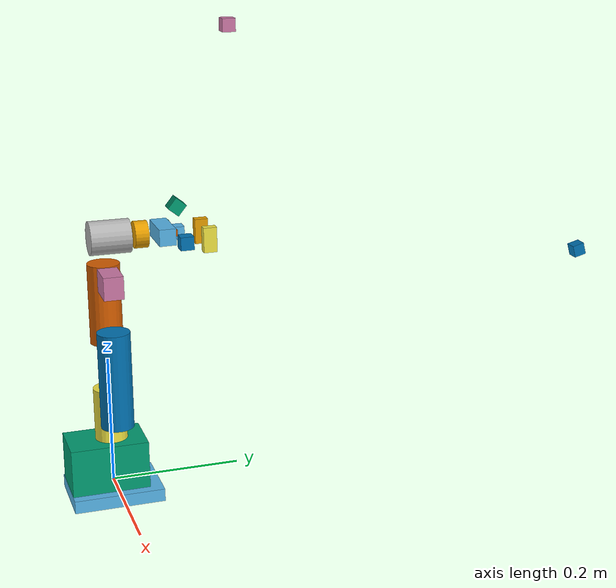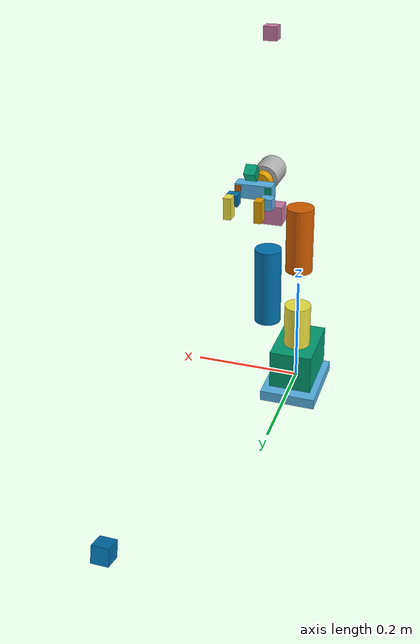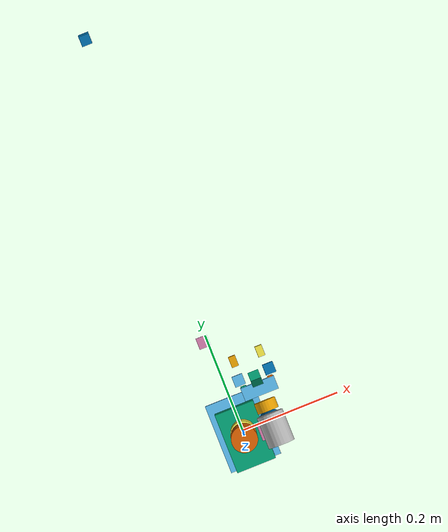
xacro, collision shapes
<?xml version="1.0"?>

<robot xmlns:xacro="http://www.ros.org/wiki/xacro" name="avu">

  <xacro:include filename="$(find avu_description)/urdf/avu_gazebo.xacro" />
  <xacro:include filename="$(find avu_description)/urdf/avu_ros_control.xacro" />

    <xacro:property name="M_PI" value="3.1415926535897931" />

    <xacro:property name="d435_cam_width" value="0.090"/>
    <xacro:property name="d435_cam_height" value="0.025"/>
    <xacro:property name="d435_cam_depth" value="0.02505"/>

    <xacro:property name="d435_cam_depth_to_infra1_offset" value="0.0"/>
    <xacro:property name="d435_cam_depth_to_infra2_offset" value="-0.050"/>
    <xacro:property name="d435_cam_depth_to_color_offset" value="0.015"/>

    <xacro:property name="joint_effort" value="56.0"/>
    <xacro:property name="joint_velocity" value="2.792527"/>
    <xacro:property name="joint_damping" value="0.0"/>
    <xacro:property name="joint_friction" value="0.0"/>

    <xacro:property name="link1_mass" value="0.12"/>
    <xacro:property name="link2_mass" value="0.19"/>
    <xacro:property name="link3_mass" value="0.16"/>
    <xacro:property name="link4_mass" value="0.124"/>
    <xacro:property name="link5_mass" value="0.11"/>
    <xacro:property name="link6_mass" value="0.0739"/>
    <xacro:property name="flange_mass" value="0.035"/>

    <xacro:property name="joint_effort" value="56.0"/>
    <xacro:property name="joint_velocity" value="2.792527"/>
    <xacro:property name="joint_damping" value="0.0"/>
    <xacro:property name="joint_friction" value="0.0"/>

    <xacro:property name="gripper_link_mass" value="0.007"/>
    <xacro:property name="gripper_link_ixx" value="1e-6"/>
    <xacro:property name="gripper_link_iyy" value="1e-6"/>
    <xacro:property name="gripper_link_izz" value="1e-6"/>

    <xacro:macro name="link_inertial" params="mass ixx iyy izz">
        <inertial>
          <origin xyz="0 0 0.0" rpy="0 0 0"/>
          <mass value="${mass}"/>
          <inertia
              ixx="${ixx}" ixy="0.0" ixz="0.0"
              iyy="${iyy}" iyz="0.0"
              izz="${izz}"/>
        </inertial>
    </xacro:macro>

    <xacro:macro name="gripper_link_inertial">
      <inertial>
        <origin xyz="0 0 0.0" rpy="0 0 0"/>
        <mass value="${gripper_link_mass}"/>
        <inertia
          ixx="${gripper_link_ixx}" ixy="0.0" ixz="0.0"
          iyy="${gripper_link_iyy}" iyz="0.0"
          izz="${gripper_link_izz}"/>
      </inertial>
    </xacro:macro>

    <xacro:macro name="material_visual" params="ref_link ambient diffuse specular">
        <gazebo reference="${ref_link}">
        <visual>
            <material>
            <ambient>${ambient}</ambient>
            <diffuse>${diffuse}</diffuse>
            <specular>${specular}</specular>
            </material>
        </visual>
        </gazebo>
    </xacro:macro>

    <link name="world"/>

    <link name="base_link">
            <inertial>
                <origin xyz="0 0 0.0" rpy="0 0 0"/>
                <mass value="0.33"/>
                <inertia
                    ixx="0.000784" ixy="0.0" ixz="0.0"
                    iyy="0.000867" iyz="0.0"
                    izz="0.001598"/>
            </inertial>
            <visual>
                <geometry>
                    <mesh filename="package://avu_description/meshes/base_link.dae"/>
                </geometry>
                <origin xyz="0.0 0 -0.03" rpy="0 0 ${pi/2}"/>
            </visual>
            <collision>
                <geometry>
                    <box size="0.105 0.14 0.02"/>
                </geometry>
                <origin xyz="0.0 0.0 -0.015" rpy="0 0 0"/>
            </collision>
    </link>

    <link name="link1">
      <xacro:link_inertial mass="${link1_mass}" ixx="0.000148" iyy="0.000148" izz="0.000096"/>
      <visual>
        <geometry>
          <mesh filename="package://avu_description/meshes/link1.dae"/>
        </geometry>
        <origin xyz="0.0 0 0" rpy="0 0 ${-pi/2}"/>
      </visual>
      <collision>
        <geometry>
          <box size="0.08 0.12 0.075"/>
        </geometry>
        <origin xyz="0.0 -0.01 0.034" rpy="0 0 0"/>
      </collision>
    </link>

    <link name="link2">
      <xacro:link_inertial mass="${link2_mass}" ixx="0.000148" iyy="0.000148" izz="0.000096"/>
      <visual>
        <geometry>
          <mesh filename="package://avu_description/meshes/link2.dae"/>
        </geometry>
        <origin xyz="0.0 0 -0.06096" rpy="0 0 ${-pi/2}"/>
      </visual>
      <collision>
        <geometry>
          <cylinder radius="0.025" length="0.085"/>
        </geometry>
        <origin xyz="0.0 0 -0.02" rpy="0 0 ${-pi/2}"/>
      </collision>
    </link>

    <link name="link3">
      <xacro:link_inertial mass="${link3_mass}" ixx="0.000148" iyy="0.000148" izz="0.000096"/>
      <visual>
        <geometry>
          <mesh filename="package://avu_description/meshes/link3.dae"/>
        </geometry>
        <origin xyz="0.0 0 0.03256" rpy="0 ${-pi/2} 0"/>
      </visual>
      <collision>
        <geometry>
          <cylinder radius="0.025" length="0.15"/>
        </geometry>
        <origin xyz="-0.058 0 0.059" rpy="0 ${-pi/2} 0"/>
      </collision>
    </link>

    <link name="link4">
      <xacro:link_inertial mass="${link4_mass}" ixx="0.000103" iyy="0.000103" izz="0.000096"/>
      <visual>
        <geometry>
          <mesh filename="package://avu_description/meshes/link4.dae"/>
        </geometry>
        <origin xyz="0.0 0 0.03056" rpy="0 ${-pi/2} 0"/>
      </visual>
      <collision>
        <geometry>
          <cylinder radius="0.025" length="0.125"/>
        </geometry>
        <origin xyz="-0.05 0 0.0" rpy="0 ${-pi/2} 0"/>
      </collision>
    </link>

    <link name="link5">
      <xacro:link_inertial mass="${link5_mass}" ixx="0.000103" iyy="0.000103" izz="0.000096"/>
      <visual>
        <geometry>
          <mesh filename="package://avu_description/meshes/link5.dae"/>
        </geometry>
        <origin xyz="0.0 0 -0.03356" rpy="${-pi/2} 0 0"/>
      </visual>
      <collision>
        <geometry>
          <box size="0.03 0.035 0.05"/>
        </geometry>
        <origin xyz="0.0 0 -0.005" rpy="0 0.0 0"/>
      </collision>
    </link>

    <link name="link6">
      <xacro:link_inertial mass="${link6_mass}" ixx="0.00006649" iyy="0.00006649" izz="0.000096"/>
      <visual>
        <geometry>
          <mesh filename="package://avu_description/meshes/link6.dae"/>
        </geometry>
        <origin xyz="0 0.00 -0.038" rpy="0 0 0"/>
      </visual>
      <collision>
        <geometry>
          <cylinder radius="0.025" length="0.06"/>
        </geometry>
        <origin xyz="0 0.00 0.0" rpy="${-pi/2} 0 0"/>
      </collision>
    </link>

    <link name="flange_link">
      <xacro:link_inertial mass="${flange_mass}" ixx="0.0000149" iyy="0.0000149" izz="0.0000196"/>
      <visual>
        <geometry>
          <mesh filename="package://avu_description/meshes/link7.dae"/>
        </geometry>
        <origin xyz="0.0 0 -0.012" rpy="0 0 0"/>
      </visual>
      <collision>
        <geometry>
          <cylinder radius="0.02" length="0.02"/>
        </geometry>
        <origin xyz="0 0.00 0.0" rpy="0 0 0"/>
      </collision>
    </link>

    <joint name="virtual" type="fixed">
        <parent link="world"/>
        <child link="base_link"/>
        <origin xyz="0 0 0" rpy="0 0 0"/>
    </joint>

    <joint name="base_link_to_link1" type="fixed">
      <parent link="base_link"/>
      <child link="link1"/>
      <origin xyz="0 0 0" rpy="0 0 0"/>
    </joint>

    <joint name="joint_1" type="revolute">
      <axis xyz="0 0 1"/>
      <limit effort="${joint_effort}" lower="-2.879793" upper="2.879793" velocity="${joint_velocity}"/>
      <parent link="link1"/>
      <child link="link2"/>
      <origin xyz="0 0 0.13156" rpy="0 0 ${pi/2}"/>
      <dynamics damping="${joint_damping}" friction="${joint_friction}"/>
    </joint>

    <joint name="joint_2" type="revolute">
      <axis xyz="0 0 1"/>
      <limit effort="${joint_effort}" lower="-2.879793" upper="2.879793" velocity="${joint_velocity}"/>
      <parent link="link2"/>
      <child link="link3"/>
      <origin xyz="0 0 -0.001" rpy="0 ${pi/2} ${-pi/2}"/>
      <dynamics damping="${joint_damping}" friction="${joint_friction}"/>
    </joint>

    <joint name="joint_3" type="revolute">
      <axis xyz="0 0 1"/>
      <limit effort="${joint_effort}" lower="-2.879793" upper="2.879793" velocity="${joint_velocity}"/>
      <parent link="link3"/>
      <child link="link4"/>
      <origin xyz="-0.1104 0 0" rpy="0 0 0"/>
      <dynamics damping="${joint_damping}" friction="${joint_friction}"/>
    </joint>

    <joint name="joint_4" type="revolute">
      <axis xyz="0 0 1"/>
      <limit effort="${joint_effort}" lower="-2.879793" upper="2.879793" velocity="${joint_velocity}"/>
      <parent link="link4"/>
      <child link="link5"/>
      <origin xyz="-0.096 0 0.06062" rpy="0 0 ${-pi/2}"/>
      <dynamics damping="${joint_damping}" friction="${joint_friction}"/>
    </joint>

    <joint name="joint_5" type="revolute">
      <axis xyz="0 0 1"/>
      <limit effort="${joint_effort}" lower="-2.879793" upper="2.879793" velocity="${joint_velocity}"/>
      <parent link="link5"/>
      <child link="link6"/>
      <origin xyz="0 -0.07318 0" rpy="${pi/2} ${-pi/2} 0"/>
      <dynamics damping="${joint_damping}" friction="${joint_friction}"/>
    </joint>

    <joint name="joint_6" type="revolute">
      <axis xyz="0 0 1"/>
      <limit effort="${joint_effort}" lower="-3.05" upper="3.05" velocity="${joint_velocity}"/>
      <parent link="link6"/>
      <child link="flange_link"/>
      <origin xyz="0 0.0456 0" rpy="${-pi/2} 0 0"/>
      <dynamics damping="${joint_damping}" friction="${joint_friction}"/>
    </joint>

    <link name="gripper_base">
      <inertial>
        <origin xyz="0 0 0.0" rpy="0 0 0"/>
        <mass value="0.07"/>
        <inertia
          ixx="0.000010725" ixy="0.0" ixz="0.0"
          iyy="0.000014392" iyz="0.0"
          izz="0.000018517"/>
      </inertial>
      <visual>
        <geometry>
          <mesh filename="package://avu_description/meshes/gripper_base.dae"/>
        </geometry>
        <origin xyz="0.0 0.0 -0.012" rpy="0 0 0"/>
      </visual>
      <collision>
        <geometry>
          <box size="0.065 0.025 0.025"/>
        </geometry>
        <origin xyz="0.0 0.0 0.0" rpy="0 0 0"/>
      </collision>
    </link>

    <link name='camera_link'>
      <pose>0 0 0 0 0 0</pose>
      <collision>
        <origin xyz="0 0 0" rpy="0 0 0"/>
        <geometry>
          <box size=".02 .02 .02"/>
        </geometry>
      </collision>

      <visual name='camera_link_visual'>
        <origin xyz="0 0 0" rpy="0 0 0"/>
        <geometry>
          <box size=".02 .02 .02"/>
        </geometry>
      </visual>

    </link>

    <joint type="fixed" name="camera_joint">
      <origin xyz="0 0.021 0.038" rpy="0 0.69 1.5707"/>
      <child link="camera_link"/>
      <parent link="gripper_base"/>
    </joint>

    <joint type="fixed" name="camera_optical_joint">
      <origin xyz="0 0 0" rpy="-1.5707 0 -1.5707"/>
      <child link="camera_link_optical"/>
      <parent link="camera_link"/>
    </joint>

    <link name="camera_link_optical">
    </link>

    <link name='camera_front_link'>
      <pose>0 0 0 0 0 0</pose>
      <collision>
        <origin xyz="0 0 0" rpy="0 0 0"/>
        <geometry>
          <box size=".02 .02 .02"/>
        </geometry>
      </collision>

      <visual name='camera_front_link_visual'>
        <origin xyz="0 0 0" rpy="0 0 0"/>
        <geometry>
          <box size=".02 .02 .02"/>
        </geometry>
      </visual>

    </link>

    <joint type="fixed" name="camera_front_joint">
      <origin xyz="0 0.8 0.3" rpy="3.1414 -3.40 1.5707"/>
      <child link="camera_front_link"/>
      <parent link="base_link"/>
    </joint>

    <joint type="fixed" name="camera_front_optical_joint">
      <origin xyz="0 0 0" rpy="-1.5707 0 -1.5707"/>
      <child link="camera_front_link_optical"/>
      <parent link="camera_front_link"/>
    </joint>

    <link name="camera_front_link_optical">
    </link>

    <link name='camera_top_link'>
      <pose>0 0 0 0 0 0</pose>
      <collision>
        <origin xyz="0 0 0" rpy="0 0 0"/>
        <geometry>
          <box size=".02 .02 .02"/>
        </geometry>
      </collision>

      <visual name='camera_top_link_visual'>
        <origin xyz="0 0 0" rpy="0 0 0"/>
        <geometry>
          <box size=".02 .02 .02"/>
        </geometry>
      </visual>

    </link>

    <joint type="fixed" name="camera_top_joint">
      <origin xyz="0 0.2 0.7" rpy="0 1.5707 1.5707"/>
      <child link="camera_top_link"/>
      <parent link="base_link"/>
    </joint>

    <joint type="fixed" name="camera_top_optical_joint">
      <origin xyz="0 0 0" rpy="-1.5707 0 -1.5707"/>
      <child link="camera_top_link_optical"/>
      <parent link="camera_top_link"/>
    </joint>

    <link name="camera_top_link_optical">
    </link>

    <joint name="flange_link_to_gripper_base" type="fixed">
      <parent link="flange_link"/>
      <child link="gripper_base"/>
      <origin xyz="0 0 0.034" rpy="1.579 0 0"/>
    </joint>

    <link name="gripper_left1">
      <xacro:gripper_link_inertial/>
      <visual>
        <geometry>
          <mesh filename="package://avu_description/meshes/gripper_left1.dae" scale="1.0 1.0 2.5"/>
        </geometry>
        <origin xyz="0.039 -0.0133 -0.012" rpy="0 0 0"/>
      </visual>
      <collision>
        <geometry>
          <box size="0.013 0.02 0.0375"/>
        </geometry>
        <origin xyz="0.013 0.042 -0.010" rpy="0 0 0"/>
      </collision>
    </link>

    <link name="gripper_left2">
      <xacro:gripper_link_inertial/>
      <visual>
        <geometry>
          <mesh filename="package://avu_description/meshes/gripper_left2.dae"/>
        </geometry>
        <origin xyz="0.005 -0.0195 -0.012" rpy="0 0 0"/>
      </visual>
      <collision>
        <geometry>
          <box size="0.02 0.02 0.02"/>
        </geometry>
        <origin xyz="-0.025 0.0 -0.010" rpy="0 0 0"/>
      </collision>
    </link>

    <link name="gripper_left3">
      <xacro:gripper_link_inertial/>
      <visual>
        <geometry>
          <mesh filename="package://avu_description/meshes/gripper_left3.dae"/>
        </geometry>
        <origin xyz="0.012 0.0025 -0.012" rpy="0 0 0"/>
      </visual>
      <collision>
        <geometry>
          <box size="0.01 0.01 0.01"/>
        </geometry>
        <origin xyz="-0.014 0.005 0.005" rpy="0 0 0"/>
      </collision>
    </link>

    <link name="gripper_right1">
      <xacro:gripper_link_inertial/>
      <visual>
        <geometry>
          <mesh filename="package://avu_description/meshes/gripper_right1.dae" scale="1.0 1.0 2.5"/>
        </geometry>
        <origin xyz="-0.039 -0.0133 -0.012" rpy="0 0 0"/>
      </visual>
      <collision>
        <geometry>
          <box size="0.013 0.02 0.0375"/>
        </geometry>
        <origin xyz="-0.013 0.042 -0.010" rpy="0 0 0"/>
      </collision>
    </link>

    <link name="gripper_right2">
      <xacro:gripper_link_inertial/>
      <visual>
        <geometry>
          <mesh filename="package://avu_description/meshes/gripper_right2.dae"/>
        </geometry>
        <origin xyz="-0.005 -0.0195 -0.012" rpy="0 0 0"/>
      </visual>
      <collision>
        <geometry>
          <box size="0.02 0.02 0.02"/>
        </geometry>
        <origin xyz="0.025 0.0 -0.010" rpy="0 0 0"/>
      </collision>
    </link>

    <link name="gripper_right3">
      <xacro:gripper_link_inertial/>
      <visual>
        <geometry>
          <mesh filename="package://avu_description/meshes/gripper_right3.dae"/>
        </geometry>
        <origin xyz="-0.012 0.0025 -0.012" rpy="0 0 0"/>
      </visual>
      <collision>
        <geometry>
          <box size="0.01 0.01 0.01"/>
        </geometry>
        <origin xyz="0.014 0.005 0.005" rpy="0 0 0"/>
      </collision>
    </link>

    <joint name="gripper_joint" type="revolute">
      <axis xyz="0 0 1"/>
      <limit effort="${joint_effort}" lower="-0.7" upper="0.15" velocity="${joint_velocity}"/>
      <parent link="gripper_base"/>
      <child link="gripper_left3"/>
      <origin xyz="-0.012 0.005 0" rpy="0 0 0"/>
      <dynamics damping="${joint_damping}" friction="${joint_friction}"/>
    </joint>

    <joint name="gripper_base_to_gripper_left2" type="revolute">
      <axis xyz="0 0 1"/>
      <limit effort="${joint_effort}" lower="-0.8" upper="0.5" velocity="${joint_velocity}"/>
      <parent link="gripper_base"/>
      <child link="gripper_left2"/>
      <origin xyz="-0.005 0.027 0" rpy="0 0 0"/>
      <mimic joint="gripper_joint" multiplier="1.0" offset="0"/>
      <dynamics damping="${joint_damping}" friction="${joint_friction}"/>
    </joint>

    <joint name="gripper_left3_to_gripper_left1" type="revolute">
      <axis xyz="0 0 1"/>
      <limit effort="${joint_effort}" lower="-0.5" upper="0.5" velocity="${joint_velocity}"/>
      <parent link="gripper_left3"/>
      <child link="gripper_left1"/>
      <origin xyz="-0.027 0.016 0" rpy="0 0 0"/>
      <mimic joint="gripper_joint" multiplier="-1.0" offset="0"/>
      <dynamics damping="${joint_damping}" friction="${joint_friction}"/>
    </joint>

    <joint name="gripper_base_to_gripper_right3" type="revolute">
      <axis xyz="0 0 1"/>
      <limit effort="${joint_effort}" lower="-0.15" upper="0.7" velocity="${joint_velocity}"/>
      <parent link="gripper_base"/>
      <child link="gripper_right3"/>
      <origin xyz="0.012 0.005 0" rpy="0 0 0"/>
      <mimic joint="gripper_joint" multiplier="-1.0" offset="0"/>
      <dynamics damping="${joint_damping}" friction="${joint_friction}"/>
    </joint>

    <joint name="gripper_base_to_gripper_right2" type="revolute">
      <axis xyz="0 0 1"/>
      <limit effort="${joint_effort}" lower="-0.5" upper="0.8" velocity="${joint_velocity}"/>
      <parent link="gripper_base"/>
      <child link="gripper_right2"/>
      <origin xyz="0.005 0.027 0" rpy="0 0 0"/>
      <mimic joint="gripper_joint" multiplier="-1.0" offset="0"/>
      <dynamics damping="${joint_damping}" friction="${joint_friction}"/>
    </joint>

    <joint name="gripper_right3_to_gripper_right1" type="revolute">
      <axis xyz="0 0 1"/>
      <limit effort="${joint_effort}" lower="-0.5" upper="0.5" velocity="${joint_velocity}"/>
      <parent link="gripper_right3"/>
      <child link="gripper_right1"/>
      <origin xyz="0.027 0.016 0" rpy="0 0 0"/>
      <mimic joint="gripper_joint" multiplier="1.0" offset="0"/>
      <dynamics damping="${joint_damping}" friction="${joint_friction}"/>
    </joint>

    <link name="end_effector"/>

    <joint name="ee-joint" type="fixed">
      <parent link="gripper_base"/>
      <child link="end_effector"/>
      <origin xyz="0 0.08 0" rpy="0 0 0"/>
    </joint>

    <xacro:material_visual ref_link="link1" ambient="0.5 0.5 0.5 1" diffuse="0.5 0.5 0.5 1" specular="0.5 0.5 0.5 1"/>
    <xacro:material_visual ref_link="link2" ambient="1 1 1 1" diffuse="1 1 1 1" specular="1 1 1 1"/>
    <xacro:material_visual ref_link="link3" ambient="1 1 1 1" diffuse="1 1 1 1" specular="1 1 1 1"/>
    <xacro:material_visual ref_link="link4" ambient="1 1 1 1" diffuse="1 1 1 1" specular="1 1 1 1"/>
    <xacro:material_visual ref_link="link5" ambient="1 1 1 1" diffuse="1 1 1 1" specular="1 1 1 1"/>
    <xacro:material_visual ref_link="link6" ambient="1 1 1 1" diffuse="1 1 1 1" specular="1 1 1 1"/>
    <xacro:material_visual ref_link="flange_link" ambient="0.5 0.5 0.5 1" diffuse="0.5 0.5 0.5 1" specular="0.5 0.5 0.5 1"/>

</robot>
